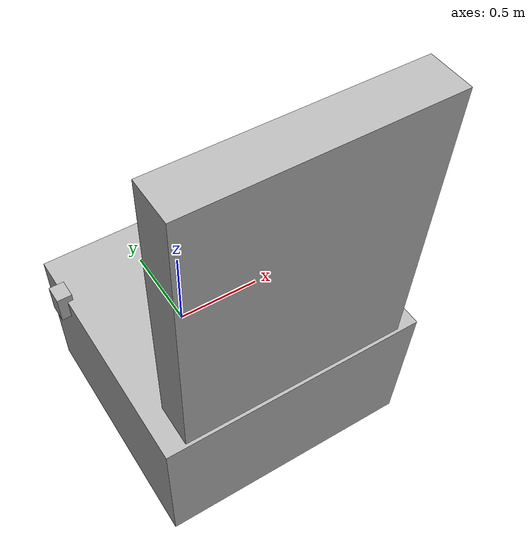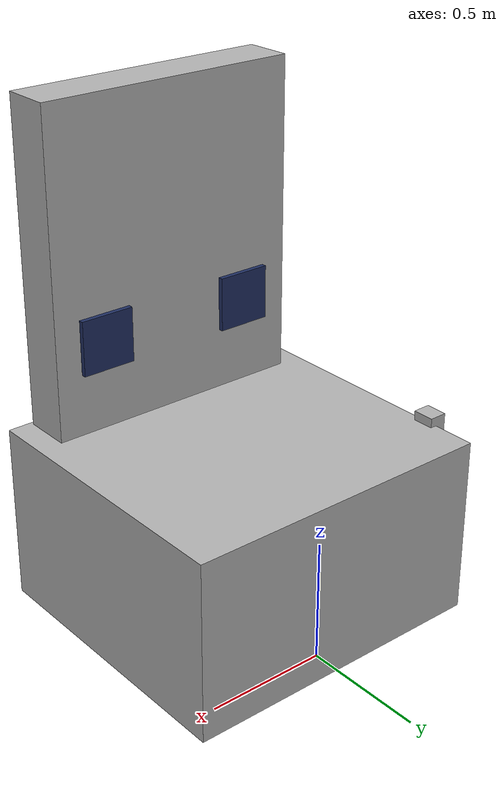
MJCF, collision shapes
<mujoco model="vention">
  <option integrator="implicitfast"/>

  <compiler angle="radian" meshdir="assets"/>

  <!-- Default camera: front view looking at workspace -->
  <statistic center="0 -0.4 1.1" extent="1.5"/>
  <visual>
    <global azimuth="-90" elevation="-26.5"/>
    <!-- Glossy "movie robot" lighting: soft ambient + specular highlights -->
    <headlight ambient="0.4 0.4 0.4" diffuse="0.4 0.4 0.4" specular="0.3 0.3 0.3"/>
  </visual>

  <contact>
    <exclude body1="vention_base" body2="left_arm_vention_base"/>
    <exclude body1="vention_base" body2="right_arm_vention_base"/>
  </contact>

  <default>
    <default class="vention">
      <!-- Anodized aluminum frame appearance -->
      <material specular="0.6" shininess="0.3"/>
      <default class="visual">
        <geom type="mesh" group="2" contype="0" conaffinity="0"/>
      </default>
      <default class="collision">
        <geom type="mesh" group="3" rgba="0.7 0.7 0.7 0.9"/>
      </default>
    </default>
  </default>

  <asset>
    <!-- Light gray skybox for paper-quality screenshots (toggle skybox in viewer Rendering menu) -->
    <texture name="light_skybox" type="skybox" builtin="flat" rgb1="0.92 0.92 0.92" width="1" height="1"/>
    <!-- Dark anodized blue for Vention frame and mounting plates -->
    <material name="blue" rgba="0.12 0.18 0.38 1" specular="0.5" shininess="0.3"/>
    <material name="red" rgba="0.12 0.18 0.38 1" specular="0.5" shininess="0.3"/>

    <mesh file="vention_frame_visual_model.stl"/>
  </asset>

  <worldbody>
    <body name="vention_base" childclass="vention">
      <geom mesh="vention_frame_visual_model" material="blue" class="visual"/>

      <!-- Exact dimensions of the vention table are: x: 1.26, y: 1.12, z: 0.755 -->
      <!-- To add padding to the Vention table, increase the z-direction offset -->
      <geom type="box" pos="0 -0.475 0.3825" size="0.65 0.6 0.371" class="collision"/>
      <!-- Vention actuator frame back panel - contact exclusion prevents arm base collision -->
      <geom name="vention_back_panel" type="box" pos="0 -0.96 1.41" size="0.55 0.1 0.66" class="collision"/>

      <!-- Collision for side box -->
      <geom name="box" class="collision" type="box" size="0.037 0.045 0.072" pos="-0.66 -0.1 0.72"/>

      <!-- Worktop: usable work surface on vention base (1.2m x 0.8m), invisible for clean renders -->
      <site name="worktop" type="box" pos="0 -0.35 0.755" size="0.6 0.4 0.005" rgba="0.2 0.8 0.2 0" group="2"/>

      <body name="left_arm_vention_base" pos="-0.330 -0.8480 1.120" quat="0 0 0 1" gravcomp="1">
        <geom type="box" size="0.1125 0.01 0.1125" mass="18.57" material="red"/>
        <joint name="left_arm_linear_vention" type="slide" axis="0 0 1" range="0 0.5" armature="666"/>
        <site name="left_arm_attachment_site" size="0.01" pos="0 -0.03 0" quat="0 0 -0.7070904020014415 0.7071231599922605" rgba="0.5 0.5 0.5 0.3" group="4"/>
      </body>

      <body name="right_arm_vention_base" pos="0.330 -0.8480 1.120" quat="0 0 0 1" gravcomp="1">
        <geom type="box" size="0.1125 0.01 0.1125" mass="18.57" material="red"/>
        <joint name="right_arm_linear_vention" type="slide" axis="0 0 1" range="0 0.5" armature="666"/>
        <site name="right_arm_attachment_site" size="0.01" pos="0 -0.03 0" quat="0 0 -0.7070904020014415 0.7071231599922605" rgba="0.5 0.5 0.5 0.3" group="4"/>
      </body>
    </body>
  </worldbody>

  <actuator>
    <position name="left_linear_actuator" joint="left_arm_linear_vention"
              ctrlrange="0 0.5" kp="2.79e6" kv="8.88e4" forcelimited="true" forcerange="-3300 3300"/>
    <position name="right_linear_actuator" joint="right_arm_linear_vention"
              ctrlrange="0 0.5" kp="2.79e6" kv="8.88e4" forcelimited="true" forcerange="-3300 3300"/>
  </actuator>

  <keyframe>
    <!-- Ready position: arms at middle of rail (0.25m) -->
    <key name="ready" qpos="0.25 0.25" ctrl="0.25 0.25"/>
  </keyframe>
</mujoco>
